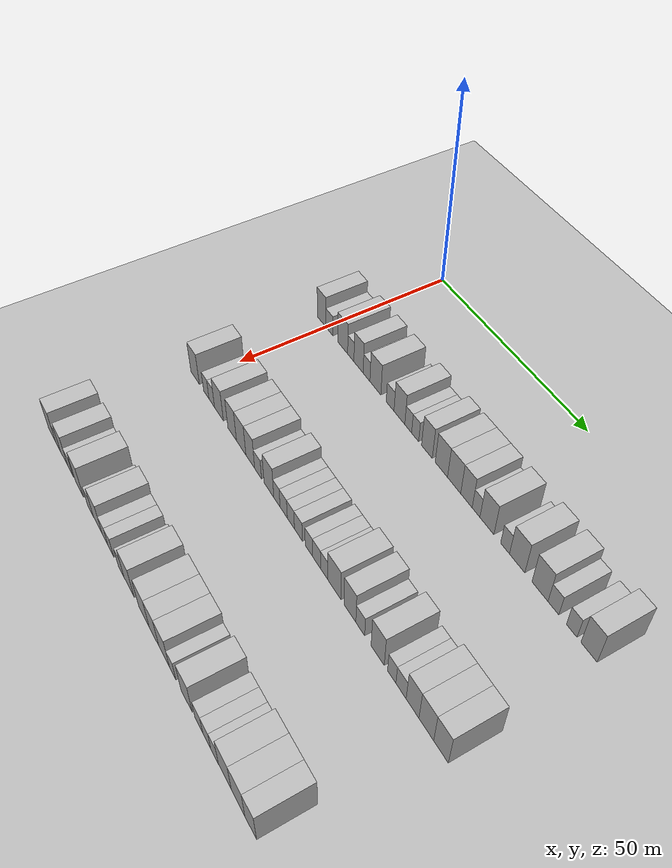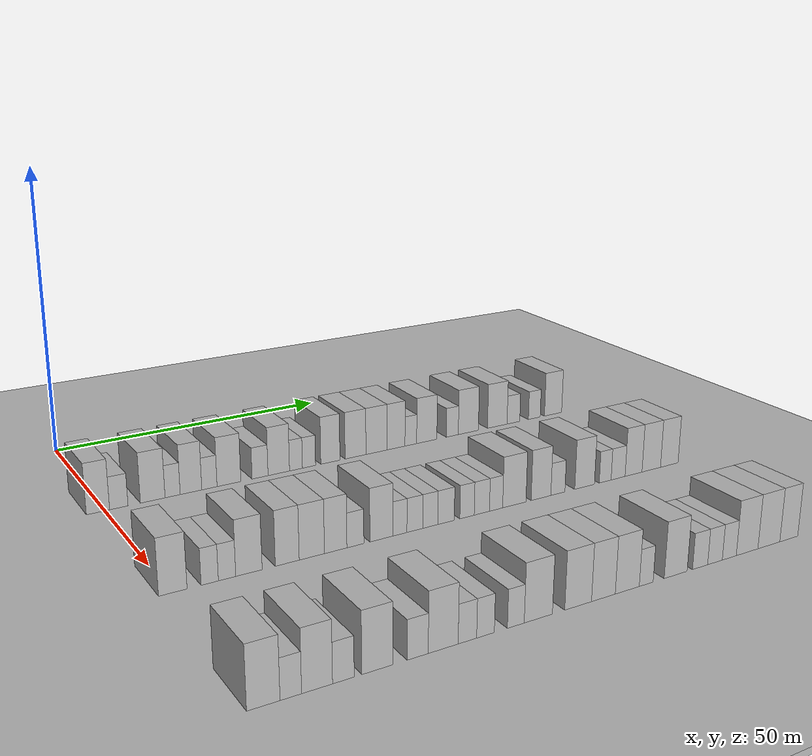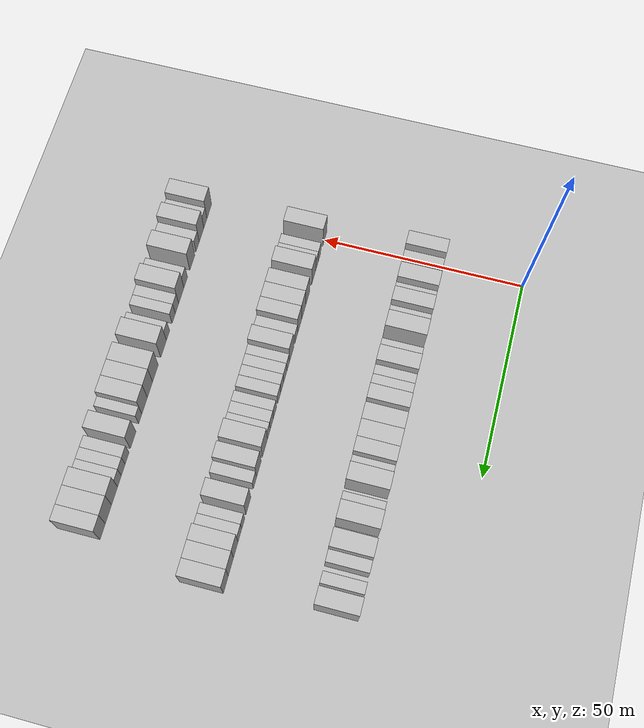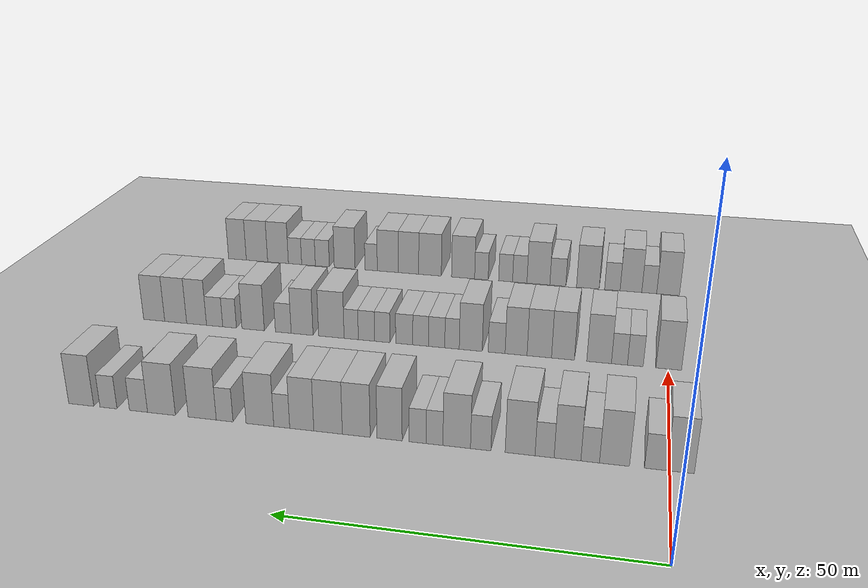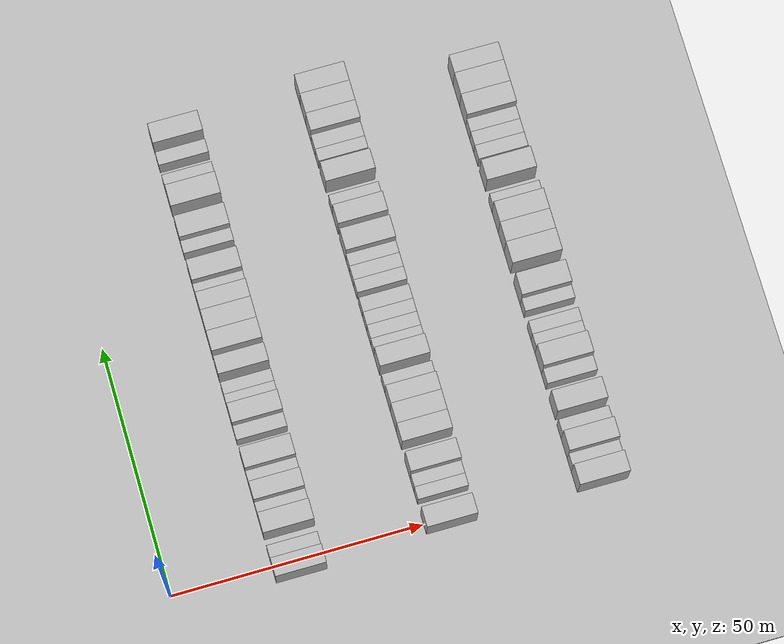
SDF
<sdf version="1.6">
 <world name="default">
  <include><name>ground_plane_1</name><uri>model://HANNAS_ground_plane</uri></include>
  <include>
   <name>ground_plane_2</name>
   <uri>model://HANNAS_ground_plane</uri>
   <pose>100 0 0  0 0 0</pose>
  </include>
  <model name="building_74">
   <static>1</static>
   <pose>25.0000 -1.3105 0 0.000000 0.000000 0.000000</pose>
   <link name="link">
    <pose>0 0 4.50 0 0 0</pose>
    <collision name="collision"><geometry><box><size>10.0000 3.6598 9.0000</size></box></geometry></collision>
    <visual name="visual">
     <cast_shadows>0</cast_shadows>
     <geometry><box><size>10.0000 3.6598 9.0000</size></box></geometry>
     <material>
      <script>
       <uri>model://HANNAS_wall/materials/scripts</uri>
       <uri>model://HANNAS_wall/materials/textures</uri>
       <name>vrc/HANNAS_wall</name>
      </script>
     </material>
    </visual>
   </link>
  </model>
  <model name="building_75">
   <static>1</static>
   <pose>25.0000 1.9865 0 0.000000 0.000000 0.000000</pose>
   <link name="link">
    <pose>0 0 3.00 0 0 0</pose>
    <collision name="collision"><geometry><box><size>10.0000 2.9341 6.0000</size></box></geometry></collision>
    <visual name="visual">
     <cast_shadows>0</cast_shadows>
     <geometry><box><size>10.0000 2.9341 6.0000</size></box></geometry>
     <material>
      <script>
       <uri>model://HANNAS_wall/materials/scripts</uri>
       <uri>model://HANNAS_wall/materials/textures</uri>
       <name>vrc/HANNAS_wall</name>
      </script>
     </material>
    </visual>
   </link>
  </model>
  <model name="building_76">
   <static>1</static>
   <pose>25.0000 7.4785 0 0.000000 0.000000 0.000000</pose>
   <link name="link">
    <pose>0 0 4.50 0 0 0</pose>
    <collision name="collision"><geometry><box><size>10.0000 4.0499 9.0000</size></box></geometry></collision>
    <visual name="visual">
     <cast_shadows>0</cast_shadows>
     <geometry><box><size>10.0000 4.0499 9.0000</size></box></geometry>
     <material>
      <script>
       <uri>model://HANNAS_wall/materials/scripts</uri>
       <uri>model://HANNAS_wall/materials/textures</uri>
       <name>vrc/HANNAS_wall</name>
      </script>
     </material>
    </visual>
   </link>
  </model>
  <model name="building_77">
   <static>1</static>
   <pose>25.0000 10.7690 0 0.000000 0.000000 0.000000</pose>
   <link name="link">
    <pose>0 0 3.00 0 0 0</pose>
    <collision name="collision"><geometry><box><size>10.0000 2.5311 6.0000</size></box></geometry></collision>
    <visual name="visual">
     <cast_shadows>0</cast_shadows>
     <geometry><box><size>10.0000 2.5311 6.0000</size></box></geometry>
     <material>
      <script>
       <uri>model://HANNAS_wall/materials/scripts</uri>
       <uri>model://HANNAS_wall/materials/textures</uri>
       <name>vrc/HANNAS_wall</name>
      </script>
     </material>
    </visual>
   </link>
  </model>
  <model name="building_78">
   <static>1</static>
   <pose>25.0000 13.8663 0 0.000000 0.000000 0.000000</pose>
   <link name="link">
    <pose>0 0 4.50 0 0 0</pose>
    <collision name="collision"><geometry><box><size>10.0000 3.6633 9.0000</size></box></geometry></collision>
    <visual name="visual">
     <cast_shadows>0</cast_shadows>
     <geometry><box><size>10.0000 3.6633 9.0000</size></box></geometry>
     <material>
      <script>
       <uri>model://HANNAS_wall/materials/scripts</uri>
       <uri>model://HANNAS_wall/materials/textures</uri>
       <name>vrc/HANNAS_wall</name>
      </script>
     </material>
    </visual>
   </link>
  </model>
  <model name="building_79">
   <static>1</static>
   <pose>25.0000 17.0112 0 0.000000 0.000000 0.000000</pose>
   <link name="link">
    <pose>0 0 3.00 0 0 0</pose>
    <collision name="collision"><geometry><box><size>10.0000 2.6265 6.0000</size></box></geometry></collision>
    <visual name="visual">
     <cast_shadows>0</cast_shadows>
     <geometry><box><size>10.0000 2.6265 6.0000</size></box></geometry>
     <material>
      <script>
       <uri>model://HANNAS_wall/materials/scripts</uri>
       <uri>model://HANNAS_wall/materials/textures</uri>
       <name>vrc/HANNAS_wall</name>
      </script>
     </material>
    </visual>
   </link>
  </model>
  <model name="building_80">
   <static>1</static>
   <pose>25.0000 20.4085 0 0.000000 0.000000 0.000000</pose>
   <link name="link">
    <pose>0 0 4.50 0 0 0</pose>
    <collision name="collision"><geometry><box><size>10.0000 4.1681 9.0000</size></box></geometry></collision>
    <visual name="visual">
     <cast_shadows>0</cast_shadows>
     <geometry><box><size>10.0000 4.1681 9.0000</size></box></geometry>
     <material>
      <script>
       <uri>model://HANNAS_wall/materials/scripts</uri>
       <uri>model://HANNAS_wall/materials/textures</uri>
       <name>vrc/HANNAS_wall</name>
      </script>
     </material>
    </visual>
   </link>
  </model>
  <model name="building_81">
   <static>1</static>
   <pose>25.0000 25.9313 0 0.000000 0.000000 0.000000</pose>
   <link name="link">
    <pose>0 0 3.00 0 0 0</pose>
    <collision name="collision"><geometry><box><size>10.0000 2.8774 6.0000</size></box></geometry></collision>
    <visual name="visual">
     <cast_shadows>0</cast_shadows>
     <geometry><box><size>10.0000 2.8774 6.0000</size></box></geometry>
     <material>
      <script>
       <uri>model://HANNAS_wall/materials/scripts</uri>
       <uri>model://HANNAS_wall/materials/textures</uri>
       <name>vrc/HANNAS_wall</name>
      </script>
     </material>
    </visual>
   </link>
  </model>
  <model name="building_82">
   <static>1</static>
   <pose>25.0000 29.3357 0 0.000000 0.000000 0.000000</pose>
   <link name="link">
    <pose>0 0 4.50 0 0 0</pose>
    <collision name="collision"><geometry><box><size>10.0000 3.9314 9.0000</size></box></geometry></collision>
    <visual name="visual">
     <cast_shadows>0</cast_shadows>
     <geometry><box><size>10.0000 3.9314 9.0000</size></box></geometry>
     <material>
      <script>
       <uri>model://HANNAS_wall/materials/scripts</uri>
       <uri>model://HANNAS_wall/materials/textures</uri>
       <name>vrc/HANNAS_wall</name>
      </script>
     </material>
    </visual>
   </link>
  </model>
  <model name="building_83">
   <static>1</static>
   <pose>25.0000 32.5050 0 0.000000 0.000000 0.000000</pose>
   <link name="link">
    <pose>0 0 3.00 0 0 0</pose>
    <collision name="collision"><geometry><box><size>10.0000 2.4072 6.0000</size></box></geometry></collision>
    <visual name="visual">
     <cast_shadows>0</cast_shadows>
     <geometry><box><size>10.0000 2.4072 6.0000</size></box></geometry>
     <material>
      <script>
       <uri>model://HANNAS_wall/materials/scripts</uri>
       <uri>model://HANNAS_wall/materials/textures</uri>
       <name>vrc/HANNAS_wall</name>
      </script>
     </material>
    </visual>
   </link>
  </model>
  <model name="building_84">
   <static>1</static>
   <pose>25.0000 34.9417 0 0.000000 0.000000 0.000000</pose>
   <link name="link">
    <pose>0 0 3.00 0 0 0</pose>
    <collision name="collision"><geometry><box><size>10.0000 2.4661 6.0000</size></box></geometry></collision>
    <visual name="visual">
     <cast_shadows>0</cast_shadows>
     <geometry><box><size>10.0000 2.4661 6.0000</size></box></geometry>
     <material>
      <script>
       <uri>model://HANNAS_wall/materials/scripts</uri>
       <uri>model://HANNAS_wall/materials/textures</uri>
       <name>vrc/HANNAS_wall</name>
      </script>
     </material>
    </visual>
   </link>
  </model>
  <model name="building_85">
   <static>1</static>
   <pose>25.0000 39.0094 0 0.000000 0.000000 0.000000</pose>
   <link name="link">
    <pose>0 0 4.50 0 0 0</pose>
    <collision name="collision"><geometry><box><size>10.0000 3.6693 9.0000</size></box></geometry></collision>
    <visual name="visual">
     <cast_shadows>0</cast_shadows>
     <geometry><box><size>10.0000 3.6693 9.0000</size></box></geometry>
     <material>
      <script>
       <uri>model://HANNAS_wall/materials/scripts</uri>
       <uri>model://HANNAS_wall/materials/textures</uri>
       <name>vrc/HANNAS_wall</name>
      </script>
     </material>
    </visual>
   </link>
  </model>
  <model name="building_86">
   <static>1</static>
   <pose>25.0000 43.8958 0 0.000000 0.000000 0.000000</pose>
   <link name="link">
    <pose>0 0 4.50 0 0 0</pose>
    <collision name="collision"><geometry><box><size>10.0000 4.1035 9.0000</size></box></geometry></collision>
    <visual name="visual">
     <cast_shadows>0</cast_shadows>
     <geometry><box><size>10.0000 4.1035 9.0000</size></box></geometry>
     <material>
      <script>
       <uri>model://HANNAS_wall/materials/scripts</uri>
       <uri>model://HANNAS_wall/materials/textures</uri>
       <name>vrc/HANNAS_wall</name>
      </script>
     </material>
    </visual>
   </link>
  </model>
  <model name="building_87">
   <static>1</static>
   <pose>25.0000 48.0741 0 0.000000 0.000000 0.000000</pose>
   <link name="link">
    <pose>0 0 4.50 0 0 0</pose>
    <collision name="collision"><geometry><box><size>10.0000 4.2531 9.0000</size></box></geometry></collision>
    <visual name="visual">
     <cast_shadows>0</cast_shadows>
     <geometry><box><size>10.0000 4.2531 9.0000</size></box></geometry>
     <material>
      <script>
       <uri>model://HANNAS_wall/materials/scripts</uri>
       <uri>model://HANNAS_wall/materials/textures</uri>
       <name>vrc/HANNAS_wall</name>
      </script>
     </material>
    </visual>
   </link>
  </model>
  <model name="building_88">
   <static>1</static>
   <pose>25.0000 52.0142 0 0.000000 0.000000 0.000000</pose>
   <link name="link">
    <pose>0 0 4.50 0 0 0</pose>
    <collision name="collision"><geometry><box><size>10.0000 3.6272 9.0000</size></box></geometry></collision>
    <visual name="visual">
     <cast_shadows>0</cast_shadows>
     <geometry><box><size>10.0000 3.6272 9.0000</size></box></geometry>
     <material>
      <script>
       <uri>model://HANNAS_wall/materials/scripts</uri>
       <uri>model://HANNAS_wall/materials/textures</uri>
       <name>vrc/HANNAS_wall</name>
      </script>
     </material>
    </visual>
   </link>
  </model>
  <model name="building_89">
   <static>1</static>
   <pose>25.0000 55.0384 0 0.000000 0.000000 0.000000</pose>
   <link name="link">
    <pose>0 0 3.00 0 0 0</pose>
    <collision name="collision"><geometry><box><size>10.0000 2.4212 6.0000</size></box></geometry></collision>
    <visual name="visual">
     <cast_shadows>0</cast_shadows>
     <geometry><box><size>10.0000 2.4212 6.0000</size></box></geometry>
     <material>
      <script>
       <uri>model://HANNAS_wall/materials/scripts</uri>
       <uri>model://HANNAS_wall/materials/textures</uri>
       <name>vrc/HANNAS_wall</name>
      </script>
     </material>
    </visual>
   </link>
  </model>
  <model name="building_90">
   <static>1</static>
   <pose>25.0000 58.3707 0 0.000000 0.000000 0.000000</pose>
   <link name="link">
    <pose>0 0 4.50 0 0 0</pose>
    <collision name="collision"><geometry><box><size>10.0000 4.2433 9.0000</size></box></geometry></collision>
    <visual name="visual">
     <cast_shadows>0</cast_shadows>
     <geometry><box><size>10.0000 4.2433 9.0000</size></box></geometry>
     <material>
      <script>
       <uri>model://HANNAS_wall/materials/scripts</uri>
       <uri>model://HANNAS_wall/materials/textures</uri>
       <name>vrc/HANNAS_wall</name>
      </script>
     </material>
    </visual>
   </link>
  </model>
  <model name="building_91">
   <static>1</static>
   <pose>25.0000 63.7916 0 0.000000 0.000000 0.000000</pose>
   <link name="link">
    <pose>0 0 3.00 0 0 0</pose>
    <collision name="collision"><geometry><box><size>10.0000 2.5985 6.0000</size></box></geometry></collision>
    <visual name="visual">
     <cast_shadows>0</cast_shadows>
     <geometry><box><size>10.0000 2.5985 6.0000</size></box></geometry>
     <material>
      <script>
       <uri>model://HANNAS_wall/materials/scripts</uri>
       <uri>model://HANNAS_wall/materials/textures</uri>
       <name>vrc/HANNAS_wall</name>
      </script>
     </material>
    </visual>
   </link>
  </model>
  <model name="building_92">
   <static>1</static>
   <pose>25.0000 67.2893 0 0.000000 0.000000 0.000000</pose>
   <link name="link">
    <pose>0 0 4.50 0 0 0</pose>
    <collision name="collision"><geometry><box><size>10.0000 4.3969 9.0000</size></box></geometry></collision>
    <visual name="visual">
     <cast_shadows>0</cast_shadows>
     <geometry><box><size>10.0000 4.3969 9.0000</size></box></geometry>
     <material>
      <script>
       <uri>model://HANNAS_wall/materials/scripts</uri>
       <uri>model://HANNAS_wall/materials/textures</uri>
       <name>vrc/HANNAS_wall</name>
      </script>
     </material>
    </visual>
   </link>
  </model>
  <model name="building_93">
   <static>1</static>
   <pose>25.0000 73.6946 0 0.000000 0.000000 0.000000</pose>
   <link name="link">
    <pose>0 0 4.50 0 0 0</pose>
    <collision name="collision"><geometry><box><size>10.0000 4.4136 9.0000</size></box></geometry></collision>
    <visual name="visual">
     <cast_shadows>0</cast_shadows>
     <geometry><box><size>10.0000 4.4136 9.0000</size></box></geometry>
     <material>
      <script>
       <uri>model://HANNAS_wall/materials/scripts</uri>
       <uri>model://HANNAS_wall/materials/textures</uri>
       <name>vrc/HANNAS_wall</name>
      </script>
     </material>
    </visual>
   </link>
  </model>
  <model name="building_94">
   <static>1</static>
   <pose>25.0000 77.3539 0 0.000000 0.000000 0.000000</pose>
   <link name="link">
    <pose>0 0 3.00 0 0 0</pose>
    <collision name="collision"><geometry><box><size>10.0000 2.9050 6.0000</size></box></geometry></collision>
    <visual name="visual">
     <cast_shadows>0</cast_shadows>
     <geometry><box><size>10.0000 2.9050 6.0000</size></box></geometry>
     <material>
      <script>
       <uri>model://HANNAS_wall/materials/scripts</uri>
       <uri>model://HANNAS_wall/materials/textures</uri>
       <name>vrc/HANNAS_wall</name>
      </script>
     </material>
    </visual>
   </link>
  </model>
  <model name="building_95">
   <static>1</static>
   <pose>25.0000 82.1863 0 0.000000 0.000000 0.000000</pose>
   <link name="link">
    <pose>0 0 3.00 0 0 0</pose>
    <collision name="collision"><geometry><box><size>10.0000 2.7598 6.0000</size></box></geometry></collision>
    <visual name="visual">
     <cast_shadows>0</cast_shadows>
     <geometry><box><size>10.0000 2.7598 6.0000</size></box></geometry>
     <material>
      <script>
       <uri>model://HANNAS_wall/materials/scripts</uri>
       <uri>model://HANNAS_wall/materials/textures</uri>
       <name>vrc/HANNAS_wall</name>
      </script>
     </material>
    </visual>
   </link>
  </model>
  <model name="building_96">
   <static>1</static>
   <pose>25.0000 86.6099 0 0.000000 0.000000 0.000000</pose>
   <link name="link">
    <pose>0 0 4.50 0 0 0</pose>
    <collision name="collision"><geometry><box><size>10.0000 4.0874 9.0000</size></box></geometry></collision>
    <visual name="visual">
     <cast_shadows>0</cast_shadows>
     <geometry><box><size>10.0000 4.0874 9.0000</size></box></geometry>
     <material>
      <script>
       <uri>model://HANNAS_wall/materials/scripts</uri>
       <uri>model://HANNAS_wall/materials/textures</uri>
       <name>vrc/HANNAS_wall</name>
      </script>
     </material>
    </visual>
   </link>
  </model>
  <model name="building_211">
   <static>1</static>
   <pose>55.0000 0.0112 0 0.000000 0.000000 0.000000</pose>
   <link name="link">
    <pose>0 0 4.50 0 0 0</pose>
    <collision name="collision"><geometry><box><size>10.0000 4.0157 9.0000</size></box></geometry></collision>
    <visual name="visual">
     <cast_shadows>0</cast_shadows>
     <geometry><box><size>10.0000 4.0157 9.0000</size></box></geometry>
     <material>
      <script>
       <uri>model://HANNAS_wall/materials/scripts</uri>
       <uri>model://HANNAS_wall/materials/textures</uri>
       <name>vrc/HANNAS_wall</name>
      </script>
     </material>
    </visual>
   </link>
  </model>
  <model name="building_212">
   <static>1</static>
   <pose>55.0000 5.2697 0 0.000000 0.000000 0.000000</pose>
   <link name="link">
    <pose>0 0 3.00 0 0 0</pose>
    <collision name="collision"><geometry><box><size>10.0000 2.5013 6.0000</size></box></geometry></collision>
    <visual name="visual">
     <cast_shadows>0</cast_shadows>
     <geometry><box><size>10.0000 2.5013 6.0000</size></box></geometry>
     <material>
      <script>
       <uri>model://HANNAS_wall/materials/scripts</uri>
       <uri>model://HANNAS_wall/materials/textures</uri>
       <name>vrc/HANNAS_wall</name>
      </script>
     </material>
    </visual>
   </link>
  </model>
  <model name="building_213">
   <static>1</static>
   <pose>55.0000 7.7956 0 0.000000 0.000000 0.000000</pose>
   <link name="link">
    <pose>0 0 3.00 0 0 0</pose>
    <collision name="collision"><geometry><box><size>10.0000 2.5505 6.0000</size></box></geometry></collision>
    <visual name="visual">
     <cast_shadows>0</cast_shadows>
     <geometry><box><size>10.0000 2.5505 6.0000</size></box></geometry>
     <material>
      <script>
       <uri>model://HANNAS_wall/materials/scripts</uri>
       <uri>model://HANNAS_wall/materials/textures</uri>
       <name>vrc/HANNAS_wall</name>
      </script>
     </material>
    </visual>
   </link>
  </model>
  <model name="building_214">
   <static>1</static>
   <pose>55.0000 11.0484 0 0.000000 0.000000 0.000000</pose>
   <link name="link">
    <pose>0 0 4.50 0 0 0</pose>
    <collision name="collision"><geometry><box><size>10.0000 3.9551 9.0000</size></box></geometry></collision>
    <visual name="visual">
     <cast_shadows>0</cast_shadows>
     <geometry><box><size>10.0000 3.9551 9.0000</size></box></geometry>
     <material>
      <script>
       <uri>model://HANNAS_wall/materials/scripts</uri>
       <uri>model://HANNAS_wall/materials/textures</uri>
       <name>vrc/HANNAS_wall</name>
      </script>
     </material>
    </visual>
   </link>
  </model>
  <model name="building_215">
   <static>1</static>
   <pose>55.0000 16.8809 0 0.000000 0.000000 0.000000</pose>
   <link name="link">
    <pose>0 0 4.50 0 0 0</pose>
    <collision name="collision"><geometry><box><size>10.0000 3.7101 9.0000</size></box></geometry></collision>
    <visual name="visual">
     <cast_shadows>0</cast_shadows>
     <geometry><box><size>10.0000 3.7101 9.0000</size></box></geometry>
     <material>
      <script>
       <uri>model://HANNAS_wall/materials/scripts</uri>
       <uri>model://HANNAS_wall/materials/textures</uri>
       <name>vrc/HANNAS_wall</name>
      </script>
     </material>
    </visual>
   </link>
  </model>
  <model name="building_216">
   <static>1</static>
   <pose>55.0000 20.7387 0 0.000000 0.000000 0.000000</pose>
   <link name="link">
    <pose>0 0 4.50 0 0 0</pose>
    <collision name="collision"><geometry><box><size>10.0000 4.0054 9.0000</size></box></geometry></collision>
    <visual name="visual">
     <cast_shadows>0</cast_shadows>
     <geometry><box><size>10.0000 4.0054 9.0000</size></box></geometry>
     <material>
      <script>
       <uri>model://HANNAS_wall/materials/scripts</uri>
       <uri>model://HANNAS_wall/materials/textures</uri>
       <name>vrc/HANNAS_wall</name>
      </script>
     </material>
    </visual>
   </link>
  </model>
  <model name="building_217">
   <static>1</static>
   <pose>55.0000 24.5551 0 0.000000 0.000000 0.000000</pose>
   <link name="link">
    <pose>0 0 4.50 0 0 0</pose>
    <collision name="collision"><geometry><box><size>10.0000 3.6275 9.0000</size></box></geometry></collision>
    <visual name="visual">
     <cast_shadows>0</cast_shadows>
     <geometry><box><size>10.0000 3.6275 9.0000</size></box></geometry>
     <material>
      <script>
       <uri>model://HANNAS_wall/materials/scripts</uri>
       <uri>model://HANNAS_wall/materials/textures</uri>
       <name>vrc/HANNAS_wall</name>
      </script>
     </material>
    </visual>
   </link>
  </model>
  <model name="building_218">
   <static>1</static>
   <pose>55.0000 27.7704 0 0.000000 0.000000 0.000000</pose>
   <link name="link">
    <pose>0 0 3.00 0 0 0</pose>
    <collision name="collision"><geometry><box><size>10.0000 2.8031 6.0000</size></box></geometry></collision>
    <visual name="visual">
     <cast_shadows>0</cast_shadows>
     <geometry><box><size>10.0000 2.8031 6.0000</size></box></geometry>
     <material>
      <script>
       <uri>model://HANNAS_wall/materials/scripts</uri>
       <uri>model://HANNAS_wall/materials/textures</uri>
       <name>vrc/HANNAS_wall</name>
      </script>
     </material>
    </visual>
   </link>
  </model>
  <model name="building_219">
   <static>1</static>
   <pose>55.0000 32.0998 0 0.000000 0.000000 0.000000</pose>
   <link name="link">
    <pose>0 0 4.50 0 0 0</pose>
    <collision name="collision"><geometry><box><size>10.0000 3.8558 9.0000</size></box></geometry></collision>
    <visual name="visual">
     <cast_shadows>0</cast_shadows>
     <geometry><box><size>10.0000 3.8558 9.0000</size></box></geometry>
     <material>
      <script>
       <uri>model://HANNAS_wall/materials/scripts</uri>
       <uri>model://HANNAS_wall/materials/textures</uri>
       <name>vrc/HANNAS_wall</name>
      </script>
     </material>
    </visual>
   </link>
  </model>
  <model name="building_220">
   <static>1</static>
   <pose>55.0000 35.2492 0 0.000000 0.000000 0.000000</pose>
   <link name="link">
    <pose>0 0 3.00 0 0 0</pose>
    <collision name="collision"><geometry><box><size>10.0000 2.4429 6.0000</size></box></geometry></collision>
    <visual name="visual">
     <cast_shadows>0</cast_shadows>
     <geometry><box><size>10.0000 2.4429 6.0000</size></box></geometry>
     <material>
      <script>
       <uri>model://HANNAS_wall/materials/scripts</uri>
       <uri>model://HANNAS_wall/materials/textures</uri>
       <name>vrc/HANNAS_wall</name>
      </script>
     </material>
    </visual>
   </link>
  </model>
  <model name="building_221">
   <static>1</static>
   <pose>55.0000 37.8549 0 0.000000 0.000000 0.000000</pose>
   <link name="link">
    <pose>0 0 3.00 0 0 0</pose>
    <collision name="collision"><geometry><box><size>10.0000 2.7686 6.0000</size></box></geometry></collision>
    <visual name="visual">
     <cast_shadows>0</cast_shadows>
     <geometry><box><size>10.0000 2.7686 6.0000</size></box></geometry>
     <material>
      <script>
       <uri>model://HANNAS_wall/materials/scripts</uri>
       <uri>model://HANNAS_wall/materials/textures</uri>
       <name>vrc/HANNAS_wall</name>
      </script>
     </material>
    </visual>
   </link>
  </model>
  <model name="building_222">
   <static>1</static>
   <pose>55.0000 40.5751 0 0.000000 0.000000 0.000000</pose>
   <link name="link">
    <pose>0 0 3.00 0 0 0</pose>
    <collision name="collision"><geometry><box><size>10.0000 2.6718 6.0000</size></box></geometry></collision>
    <visual name="visual">
     <cast_shadows>0</cast_shadows>
     <geometry><box><size>10.0000 2.6718 6.0000</size></box></geometry>
     <material>
      <script>
       <uri>model://HANNAS_wall/materials/scripts</uri>
       <uri>model://HANNAS_wall/materials/textures</uri>
       <name>vrc/HANNAS_wall</name>
      </script>
     </material>
    </visual>
   </link>
  </model>
  <model name="building_223">
   <static>1</static>
   <pose>55.0000 43.3839 0 0.000000 0.000000 0.000000</pose>
   <link name="link">
    <pose>0 0 3.00 0 0 0</pose>
    <collision name="collision"><geometry><box><size>10.0000 2.9457 6.0000</size></box></geometry></collision>
    <visual name="visual">
     <cast_shadows>0</cast_shadows>
     <geometry><box><size>10.0000 2.9457 6.0000</size></box></geometry>
     <material>
      <script>
       <uri>model://HANNAS_wall/materials/scripts</uri>
       <uri>model://HANNAS_wall/materials/textures</uri>
       <name>vrc/HANNAS_wall</name>
      </script>
     </material>
    </visual>
   </link>
  </model>
  <model name="building_224">
   <static>1</static>
   <pose>55.0000 47.1795 0 0.000000 0.000000 0.000000</pose>
   <link name="link">
    <pose>0 0 3.00 0 0 0</pose>
    <collision name="collision"><geometry><box><size>10.0000 2.6456 6.0000</size></box></geometry></collision>
    <visual name="visual">
     <cast_shadows>0</cast_shadows>
     <geometry><box><size>10.0000 2.6456 6.0000</size></box></geometry>
     <material>
      <script>
       <uri>model://HANNAS_wall/materials/scripts</uri>
       <uri>model://HANNAS_wall/materials/textures</uri>
       <name>vrc/HANNAS_wall</name>
      </script>
     </material>
    </visual>
   </link>
  </model>
  <model name="building_225">
   <static>1</static>
   <pose>55.0000 49.9172 0 0.000000 0.000000 0.000000</pose>
   <link name="link">
    <pose>0 0 3.00 0 0 0</pose>
    <collision name="collision"><geometry><box><size>10.0000 2.8297 6.0000</size></box></geometry></collision>
    <visual name="visual">
     <cast_shadows>0</cast_shadows>
     <geometry><box><size>10.0000 2.8297 6.0000</size></box></geometry>
     <material>
      <script>
       <uri>model://HANNAS_wall/materials/scripts</uri>
       <uri>model://HANNAS_wall/materials/textures</uri>
       <name>vrc/HANNAS_wall</name>
      </script>
     </material>
    </visual>
   </link>
  </model>
  <model name="building_226">
   <static>1</static>
   <pose>55.0000 52.5783 0 0.000000 0.000000 0.000000</pose>
   <link name="link">
    <pose>0 0 3.00 0 0 0</pose>
    <collision name="collision"><geometry><box><size>10.0000 2.4926 6.0000</size></box></geometry></collision>
    <visual name="visual">
     <cast_shadows>0</cast_shadows>
     <geometry><box><size>10.0000 2.4926 6.0000</size></box></geometry>
     <material>
      <script>
       <uri>model://HANNAS_wall/materials/scripts</uri>
       <uri>model://HANNAS_wall/materials/textures</uri>
       <name>vrc/HANNAS_wall</name>
      </script>
     </material>
    </visual>
   </link>
  </model>
  <model name="building_227">
   <static>1</static>
   <pose>55.0000 56.0655 0 0.000000 0.000000 0.000000</pose>
   <link name="link">
    <pose>0 0 4.50 0 0 0</pose>
    <collision name="collision"><geometry><box><size>10.0000 4.4818 9.0000</size></box></geometry></collision>
    <visual name="visual">
     <cast_shadows>0</cast_shadows>
     <geometry><box><size>10.0000 4.4818 9.0000</size></box></geometry>
     <material>
      <script>
       <uri>model://HANNAS_wall/materials/scripts</uri>
       <uri>model://HANNAS_wall/materials/textures</uri>
       <name>vrc/HANNAS_wall</name>
      </script>
     </material>
    </visual>
   </link>
  </model>
  <model name="building_228">
   <static>1</static>
   <pose>55.0000 61.2545 0 0.000000 0.000000 0.000000</pose>
   <link name="link">
    <pose>0 0 4.50 0 0 0</pose>
    <collision name="collision"><geometry><box><size>10.0000 3.8962 9.0000</size></box></geometry></collision>
    <visual name="visual">
     <cast_shadows>0</cast_shadows>
     <geometry><box><size>10.0000 3.8962 9.0000</size></box></geometry>
     <material>
      <script>
       <uri>model://HANNAS_wall/materials/scripts</uri>
       <uri>model://HANNAS_wall/materials/textures</uri>
       <name>vrc/HANNAS_wall</name>
      </script>
     </material>
    </visual>
   </link>
  </model>
  <model name="building_229">
   <static>1</static>
   <pose>55.0000 64.6163 0 0.000000 0.000000 0.000000</pose>
   <link name="link">
    <pose>0 0 3.00 0 0 0</pose>
    <collision name="collision"><geometry><box><size>10.0000 2.8273 6.0000</size></box></geometry></collision>
    <visual name="visual">
     <cast_shadows>0</cast_shadows>
     <geometry><box><size>10.0000 2.8273 6.0000</size></box></geometry>
     <material>
      <script>
       <uri>model://HANNAS_wall/materials/scripts</uri>
       <uri>model://HANNAS_wall/materials/textures</uri>
       <name>vrc/HANNAS_wall</name>
      </script>
     </material>
    </visual>
   </link>
  </model>
  <model name="building_230">
   <static>1</static>
   <pose>55.0000 70.0637 0 0.000000 0.000000 0.000000</pose>
   <link name="link">
    <pose>0 0 4.50 0 0 0</pose>
    <collision name="collision"><geometry><box><size>10.0000 4.0676 9.0000</size></box></geometry></collision>
    <visual name="visual">
     <cast_shadows>0</cast_shadows>
     <geometry><box><size>10.0000 4.0676 9.0000</size></box></geometry>
     <material>
      <script>
       <uri>model://HANNAS_wall/materials/scripts</uri>
       <uri>model://HANNAS_wall/materials/textures</uri>
       <name>vrc/HANNAS_wall</name>
      </script>
     </material>
    </visual>
   </link>
  </model>
  <model name="building_231">
   <static>1</static>
   <pose>55.0000 74.3500 0 0.000000 0.000000 0.000000</pose>
   <link name="link">
    <pose>0 0 3.00 0 0 0</pose>
    <collision name="collision"><geometry><box><size>10.0000 2.5050 6.0000</size></box></geometry></collision>
    <visual name="visual">
     <cast_shadows>0</cast_shadows>
     <geometry><box><size>10.0000 2.5050 6.0000</size></box></geometry>
     <material>
      <script>
       <uri>model://HANNAS_wall/materials/scripts</uri>
       <uri>model://HANNAS_wall/materials/textures</uri>
       <name>vrc/HANNAS_wall</name>
      </script>
     </material>
    </visual>
   </link>
  </model>
  <model name="building_232">
   <static>1</static>
   <pose>55.0000 77.0990 0 0.000000 0.000000 0.000000</pose>
   <link name="link">
    <pose>0 0 3.00 0 0 0</pose>
    <collision name="collision"><geometry><box><size>10.0000 2.9930 6.0000</size></box></geometry></collision>
    <visual name="visual">
     <cast_shadows>0</cast_shadows>
     <geometry><box><size>10.0000 2.9930 6.0000</size></box></geometry>
     <material>
      <script>
       <uri>model://HANNAS_wall/materials/scripts</uri>
       <uri>model://HANNAS_wall/materials/textures</uri>
       <name>vrc/HANNAS_wall</name>
      </script>
     </material>
    </visual>
   </link>
  </model>
  <model name="building_233">
   <static>1</static>
   <pose>55.0000 80.4347 0 0.000000 0.000000 0.000000</pose>
   <link name="link">
    <pose>0 0 4.50 0 0 0</pose>
    <collision name="collision"><geometry><box><size>10.0000 3.6784 9.0000</size></box></geometry></collision>
    <visual name="visual">
     <cast_shadows>0</cast_shadows>
     <geometry><box><size>10.0000 3.6784 9.0000</size></box></geometry>
     <material>
      <script>
       <uri>model://HANNAS_wall/materials/scripts</uri>
       <uri>model://HANNAS_wall/materials/textures</uri>
       <name>vrc/HANNAS_wall</name>
      </script>
     </material>
    </visual>
   </link>
  </model>
  <model name="building_234">
   <static>1</static>
   <pose>55.0000 84.3214 0 0.000000 0.000000 0.000000</pose>
   <link name="link">
    <pose>0 0 4.50 0 0 0</pose>
    <collision name="collision"><geometry><box><size>10.0000 4.0951 9.0000</size></box></geometry></collision>
    <visual name="visual">
     <cast_shadows>0</cast_shadows>
     <geometry><box><size>10.0000 4.0951 9.0000</size></box></geometry>
     <material>
      <script>
       <uri>model://HANNAS_wall/materials/scripts</uri>
       <uri>model://HANNAS_wall/materials/textures</uri>
       <name>vrc/HANNAS_wall</name>
      </script>
     </material>
    </visual>
   </link>
  </model>
  <model name="building_235">
   <static>1</static>
   <pose>55.0000 88.3542 0 0.000000 0.000000 0.000000</pose>
   <link name="link">
    <pose>0 0 4.50 0 0 0</pose>
    <collision name="collision"><geometry><box><size>10.0000 3.9704 9.0000</size></box></geometry></collision>
    <visual name="visual">
     <cast_shadows>0</cast_shadows>
     <geometry><box><size>10.0000 3.9704 9.0000</size></box></geometry>
     <material>
      <script>
       <uri>model://HANNAS_wall/materials/scripts</uri>
       <uri>model://HANNAS_wall/materials/textures</uri>
       <name>vrc/HANNAS_wall</name>
      </script>
     </material>
    </visual>
   </link>
  </model>
  <model name="building_355">
   <static>1</static>
   <pose>85.0000 -0.1030 0 0.000000 0.000000 0.000000</pose>
   <link name="link">
    <pose>0 0 4.50 0 0 0</pose>
    <collision name="collision"><geometry><box><size>10.0000 4.1178 9.0000</size></box></geometry></collision>
    <visual name="visual">
     <cast_shadows>0</cast_shadows>
     <geometry><box><size>10.0000 4.1178 9.0000</size></box></geometry>
     <material>
      <script>
       <uri>model://HANNAS_wall/materials/scripts</uri>
       <uri>model://HANNAS_wall/materials/textures</uri>
       <name>vrc/HANNAS_wall</name>
      </script>
     </material>
    </visual>
   </link>
  </model>
  <model name="building_356">
   <static>1</static>
   <pose>85.0000 3.3129 0 0.000000 0.000000 0.000000</pose>
   <link name="link">
    <pose>0 0 3.00 0 0 0</pose>
    <collision name="collision"><geometry><box><size>10.0000 2.7139 6.0000</size></box></geometry></collision>
    <visual name="visual">
     <cast_shadows>0</cast_shadows>
     <geometry><box><size>10.0000 2.7139 6.0000</size></box></geometry>
     <material>
      <script>
       <uri>model://HANNAS_wall/materials/scripts</uri>
       <uri>model://HANNAS_wall/materials/textures</uri>
       <name>vrc/HANNAS_wall</name>
      </script>
     </material>
    </visual>
   </link>
  </model>
  <model name="building_357">
   <static>1</static>
   <pose>85.0000 6.6625 0 0.000000 0.000000 0.000000</pose>
   <link name="link">
    <pose>0 0 4.50 0 0 0</pose>
    <collision name="collision"><geometry><box><size>10.0000 3.9854 9.0000</size></box></geometry></collision>
    <visual name="visual">
     <cast_shadows>0</cast_shadows>
     <geometry><box><size>10.0000 3.9854 9.0000</size></box></geometry>
     <material>
      <script>
       <uri>model://HANNAS_wall/materials/scripts</uri>
       <uri>model://HANNAS_wall/materials/textures</uri>
       <name>vrc/HANNAS_wall</name>
      </script>
     </material>
    </visual>
   </link>
  </model>
  <model name="building_358">
   <static>1</static>
   <pose>85.0000 10.0824 0 0.000000 0.000000 0.000000</pose>
   <link name="link">
    <pose>0 0 3.00 0 0 0</pose>
    <collision name="collision"><geometry><box><size>10.0000 2.8545 6.0000</size></box></geometry></collision>
    <visual name="visual">
     <cast_shadows>0</cast_shadows>
     <geometry><box><size>10.0000 2.8545 6.0000</size></box></geometry>
     <material>
      <script>
       <uri>model://HANNAS_wall/materials/scripts</uri>
       <uri>model://HANNAS_wall/materials/textures</uri>
       <name>vrc/HANNAS_wall</name>
      </script>
     </material>
    </visual>
   </link>
  </model>
  <model name="building_359">
   <static>1</static>
   <pose>85.0000 14.6199 0 0.000000 0.000000 0.000000</pose>
   <link name="link">
    <pose>0 0 4.50 0 0 0</pose>
    <collision name="collision"><geometry><box><size>10.0000 4.2206 9.0000</size></box></geometry></collision>
    <visual name="visual">
     <cast_shadows>0</cast_shadows>
     <geometry><box><size>10.0000 4.2206 9.0000</size></box></geometry>
     <material>
      <script>
       <uri>model://HANNAS_wall/materials/scripts</uri>
       <uri>model://HANNAS_wall/materials/textures</uri>
       <name>vrc/HANNAS_wall</name>
      </script>
     </material>
    </visual>
   </link>
  </model>
  <model name="building_360">
   <static>1</static>
   <pose>85.0000 20.2285 0 0.000000 0.000000 0.000000</pose>
   <link name="link">
    <pose>0 0 3.00 0 0 0</pose>
    <collision name="collision"><geometry><box><size>10.0000 2.9966 6.0000</size></box></geometry></collision>
    <visual name="visual">
     <cast_shadows>0</cast_shadows>
     <geometry><box><size>10.0000 2.9966 6.0000</size></box></geometry>
     <material>
      <script>
       <uri>model://HANNAS_wall/materials/scripts</uri>
       <uri>model://HANNAS_wall/materials/textures</uri>
       <name>vrc/HANNAS_wall</name>
      </script>
     </material>
    </visual>
   </link>
  </model>
  <model name="building_361">
   <static>1</static>
   <pose>85.0000 23.8955 0 0.000000 0.000000 0.000000</pose>
   <link name="link">
    <pose>0 0 4.50 0 0 0</pose>
    <collision name="collision"><geometry><box><size>10.0000 4.3373 9.0000</size></box></geometry></collision>
    <visual name="visual">
     <cast_shadows>0</cast_shadows>
     <geometry><box><size>10.0000 4.3373 9.0000</size></box></geometry>
     <material>
      <script>
       <uri>model://HANNAS_wall/materials/scripts</uri>
       <uri>model://HANNAS_wall/materials/textures</uri>
       <name>vrc/HANNAS_wall</name>
      </script>
     </material>
    </visual>
   </link>
  </model>
  <model name="building_362">
   <static>1</static>
   <pose>85.0000 27.4344 0 0.000000 0.000000 0.000000</pose>
   <link name="link">
    <pose>0 0 3.00 0 0 0</pose>
    <collision name="collision"><geometry><box><size>10.0000 2.7404 6.0000</size></box></geometry></collision>
    <visual name="visual">
     <cast_shadows>0</cast_shadows>
     <geometry><box><size>10.0000 2.7404 6.0000</size></box></geometry>
     <material>
      <script>
       <uri>model://HANNAS_wall/materials/scripts</uri>
       <uri>model://HANNAS_wall/materials/textures</uri>
       <name>vrc/HANNAS_wall</name>
      </script>
     </material>
    </visual>
   </link>
  </model>
  <model name="building_363">
   <static>1</static>
   <pose>85.0000 30.1393 0 0.000000 0.000000 0.000000</pose>
   <link name="link">
    <pose>0 0 3.00 0 0 0</pose>
    <collision name="collision"><geometry><box><size>10.0000 2.6695 6.0000</size></box></geometry></collision>
    <visual name="visual">
     <cast_shadows>0</cast_shadows>
     <geometry><box><size>10.0000 2.6695 6.0000</size></box></geometry>
     <material>
      <script>
       <uri>model://HANNAS_wall/materials/scripts</uri>
       <uri>model://HANNAS_wall/materials/textures</uri>
       <name>vrc/HANNAS_wall</name>
      </script>
     </material>
    </visual>
   </link>
  </model>
  <model name="building_364">
   <static>1</static>
   <pose>85.0000 34.7852 0 0.000000 0.000000 0.000000</pose>
   <link name="link">
    <pose>0 0 3.00 0 0 0</pose>
    <collision name="collision"><geometry><box><size>10.0000 2.6222 6.0000</size></box></geometry></collision>
    <visual name="visual">
     <cast_shadows>0</cast_shadows>
     <geometry><box><size>10.0000 2.6222 6.0000</size></box></geometry>
     <material>
      <script>
       <uri>model://HANNAS_wall/materials/scripts</uri>
       <uri>model://HANNAS_wall/materials/textures</uri>
       <name>vrc/HANNAS_wall</name>
      </script>
     </material>
    </visual>
   </link>
  </model>
  <model name="building_365">
   <static>1</static>
   <pose>85.0000 38.3421 0 0.000000 0.000000 0.000000</pose>
   <link name="link">
    <pose>0 0 4.50 0 0 0</pose>
    <collision name="collision"><geometry><box><size>10.0000 4.4915 9.0000</size></box></geometry></collision>
    <visual name="visual">
     <cast_shadows>0</cast_shadows>
     <geometry><box><size>10.0000 4.4915 9.0000</size></box></geometry>
     <material>
      <script>
       <uri>model://HANNAS_wall/materials/scripts</uri>
       <uri>model://HANNAS_wall/materials/textures</uri>
       <name>vrc/HANNAS_wall</name>
      </script>
     </material>
    </visual>
   </link>
  </model>
  <model name="building_366">
   <static>1</static>
   <pose>85.0000 44.8082 0 0.000000 0.000000 0.000000</pose>
   <link name="link">
    <pose>0 0 4.50 0 0 0</pose>
    <collision name="collision"><geometry><box><size>10.0000 4.4408 9.0000</size></box></geometry></collision>
    <visual name="visual">
     <cast_shadows>0</cast_shadows>
     <geometry><box><size>10.0000 4.4408 9.0000</size></box></geometry>
     <material>
      <script>
       <uri>model://HANNAS_wall/materials/scripts</uri>
       <uri>model://HANNAS_wall/materials/textures</uri>
       <name>vrc/HANNAS_wall</name>
      </script>
     </material>
    </visual>
   </link>
  </model>
  <model name="building_367">
   <static>1</static>
   <pose>85.0000 49.0508 0 0.000000 0.000000 0.000000</pose>
   <link name="link">
    <pose>0 0 4.50 0 0 0</pose>
    <collision name="collision"><geometry><box><size>10.0000 4.0445 9.0000</size></box></geometry></collision>
    <visual name="visual">
     <cast_shadows>0</cast_shadows>
     <geometry><box><size>10.0000 4.0445 9.0000</size></box></geometry>
     <material>
      <script>
       <uri>model://HANNAS_wall/materials/scripts</uri>
       <uri>model://HANNAS_wall/materials/textures</uri>
       <name>vrc/HANNAS_wall</name>
      </script>
     </material>
    </visual>
   </link>
  </model>
  <model name="building_368">
   <static>1</static>
   <pose>85.0000 53.1709 0 0.000000 0.000000 0.000000</pose>
   <link name="link">
    <pose>0 0 4.50 0 0 0</pose>
    <collision name="collision"><geometry><box><size>10.0000 4.1958 9.0000</size></box></geometry></collision>
    <visual name="visual">
     <cast_shadows>0</cast_shadows>
     <geometry><box><size>10.0000 4.1958 9.0000</size></box></geometry>
     <material>
      <script>
       <uri>model://HANNAS_wall/materials/scripts</uri>
       <uri>model://HANNAS_wall/materials/textures</uri>
       <name>vrc/HANNAS_wall</name>
      </script>
     </material>
    </visual>
   </link>
  </model>
  <model name="building_369">
   <static>1</static>
   <pose>85.0000 56.5027 0 0.000000 0.000000 0.000000</pose>
   <link name="link">
    <pose>0 0 3.00 0 0 0</pose>
    <collision name="collision"><geometry><box><size>10.0000 2.4678 6.0000</size></box></geometry></collision>
    <visual name="visual">
     <cast_shadows>0</cast_shadows>
     <geometry><box><size>10.0000 2.4678 6.0000</size></box></geometry>
     <material>
      <script>
       <uri>model://HANNAS_wall/materials/scripts</uri>
       <uri>model://HANNAS_wall/materials/textures</uri>
       <name>vrc/HANNAS_wall</name>
      </script>
     </material>
    </visual>
   </link>
  </model>
  <model name="building_370">
   <static>1</static>
   <pose>85.0000 61.8477 0 0.000000 0.000000 0.000000</pose>
   <link name="link">
    <pose>0 0 4.50 0 0 0</pose>
    <collision name="collision"><geometry><box><size>10.0000 4.2221 9.0000</size></box></geometry></collision>
    <visual name="visual">
     <cast_shadows>0</cast_shadows>
     <geometry><box><size>10.0000 4.2221 9.0000</size></box></geometry>
     <material>
      <script>
       <uri>model://HANNAS_wall/materials/scripts</uri>
       <uri>model://HANNAS_wall/materials/textures</uri>
       <name>vrc/HANNAS_wall</name>
      </script>
     </material>
    </visual>
   </link>
  </model>
  <model name="building_371">
   <static>1</static>
   <pose>85.0000 66.3906 0 0.000000 0.000000 0.000000</pose>
   <link name="link">
    <pose>0 0 3.00 0 0 0</pose>
    <collision name="collision"><geometry><box><size>10.0000 2.8638 6.0000</size></box></geometry></collision>
    <visual name="visual">
     <cast_shadows>0</cast_shadows>
     <geometry><box><size>10.0000 2.8638 6.0000</size></box></geometry>
     <material>
      <script>
       <uri>model://HANNAS_wall/materials/scripts</uri>
       <uri>model://HANNAS_wall/materials/textures</uri>
       <name>vrc/HANNAS_wall</name>
      </script>
     </material>
    </visual>
   </link>
  </model>
  <model name="building_372">
   <static>1</static>
   <pose>85.0000 69.2295 0 0.000000 0.000000 0.000000</pose>
   <link name="link">
    <pose>0 0 3.00 0 0 0</pose>
    <collision name="collision"><geometry><box><size>10.0000 2.8139 6.0000</size></box></geometry></collision>
    <visual name="visual">
     <cast_shadows>0</cast_shadows>
     <geometry><box><size>10.0000 2.8139 6.0000</size></box></geometry>
     <material>
      <script>
       <uri>model://HANNAS_wall/materials/scripts</uri>
       <uri>model://HANNAS_wall/materials/textures</uri>
       <name>vrc/HANNAS_wall</name>
      </script>
     </material>
    </visual>
   </link>
  </model>
  <model name="building_373">
   <static>1</static>
   <pose>85.0000 72.0014 0 0.000000 0.000000 0.000000</pose>
   <link name="link">
    <pose>0 0 3.00 0 0 0</pose>
    <collision name="collision"><geometry><box><size>10.0000 2.7300 6.0000</size></box></geometry></collision>
    <visual name="visual">
     <cast_shadows>0</cast_shadows>
     <geometry><box><size>10.0000 2.7300 6.0000</size></box></geometry>
     <material>
      <script>
       <uri>model://HANNAS_wall/materials/scripts</uri>
       <uri>model://HANNAS_wall/materials/textures</uri>
       <name>vrc/HANNAS_wall</name>
      </script>
     </material>
    </visual>
   </link>
  </model>
  <model name="building_374">
   <static>1</static>
   <pose>85.0000 75.5221 0 0.000000 0.000000 0.000000</pose>
   <link name="link">
    <pose>0 0 4.50 0 0 0</pose>
    <collision name="collision"><geometry><box><size>10.0000 4.3113 9.0000</size></box></geometry></collision>
    <visual name="visual">
     <cast_shadows>0</cast_shadows>
     <geometry><box><size>10.0000 4.3113 9.0000</size></box></geometry>
     <material>
      <script>
       <uri>model://HANNAS_wall/materials/scripts</uri>
       <uri>model://HANNAS_wall/materials/textures</uri>
       <name>vrc/HANNAS_wall</name>
      </script>
     </material>
    </visual>
   </link>
  </model>
  <model name="building_375">
   <static>1</static>
   <pose>85.0000 79.9103 0 0.000000 0.000000 0.000000</pose>
   <link name="link">
    <pose>0 0 4.50 0 0 0</pose>
    <collision name="collision"><geometry><box><size>10.0000 4.4652 9.0000</size></box></geometry></collision>
    <visual name="visual">
     <cast_shadows>0</cast_shadows>
     <geometry><box><size>10.0000 4.4652 9.0000</size></box></geometry>
     <material>
      <script>
       <uri>model://HANNAS_wall/materials/scripts</uri>
       <uri>model://HANNAS_wall/materials/textures</uri>
       <name>vrc/HANNAS_wall</name>
      </script>
     </material>
    </visual>
   </link>
  </model>
  <model name="building_376">
   <static>1</static>
   <pose>85.0000 84.0109 0 0.000000 0.000000 0.000000</pose>
   <link name="link">
    <pose>0 0 4.50 0 0 0</pose>
    <collision name="collision"><geometry><box><size>10.0000 3.7359 9.0000</size></box></geometry></collision>
    <visual name="visual">
     <cast_shadows>0</cast_shadows>
     <geometry><box><size>10.0000 3.7359 9.0000</size></box></geometry>
     <material>
      <script>
       <uri>model://HANNAS_wall/materials/scripts</uri>
       <uri>model://HANNAS_wall/materials/textures</uri>
       <name>vrc/HANNAS_wall</name>
      </script>
     </material>
    </visual>
   </link>
  </model>
 </world>
</sdf>
